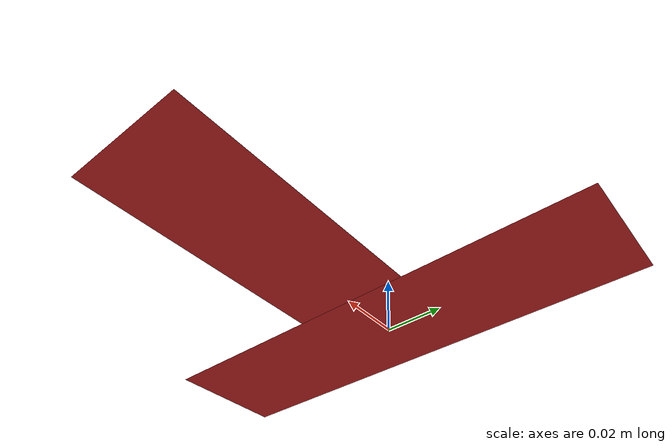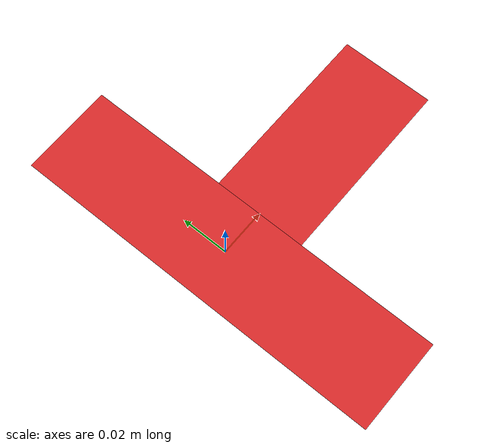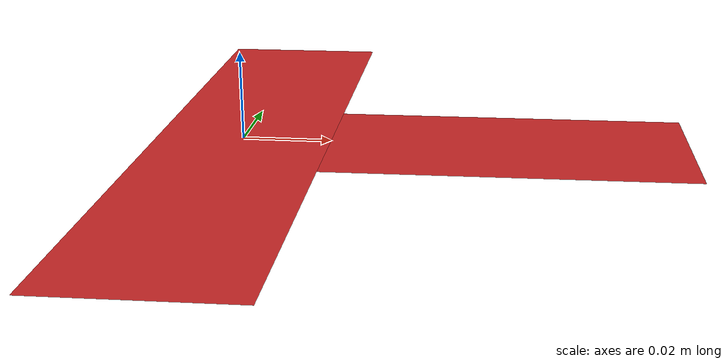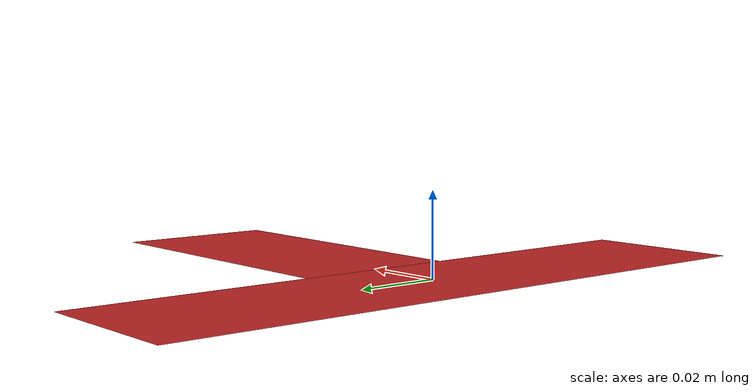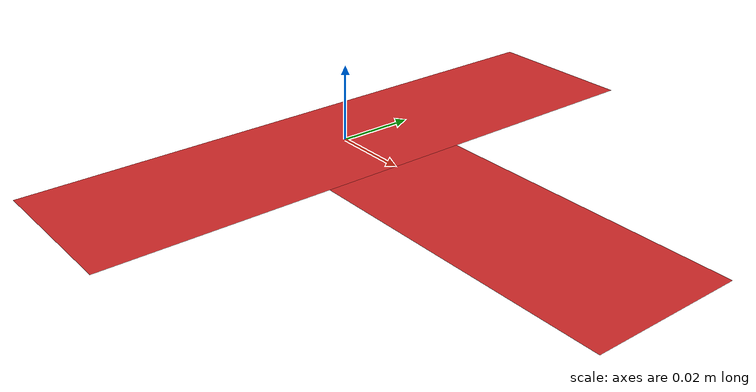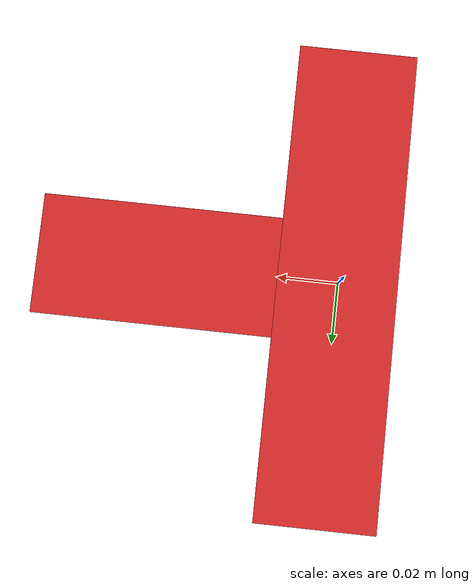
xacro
<?xml version="1.0"?>
<robot name="t_mark" xmlns:xacro="http://www.ros.org/wiki/xacro">
  <xacro:arg name="scale" default="1.0"/>
  <xacro:property name="s" value="$(arg scale)"/>

  <link name="mark_link">
    <inertial>
      <mass value="0.001"/>
      <origin xyz="0 0 0" rpy="0 0 0"/>
      <inertia ixx="0.0001" ixy="0" ixz="0" iyy="0.0001" iyz="0" izz="0.0001"/>
    </inertial>

    <visual>
      <geometry><box size="${0.04*s} ${0.16*s} 0.0"/></geometry>
    </visual>

    <visual>
      <origin xyz="${0.06*s} 0 0"/>
      <geometry><box size="${0.08*s} ${0.04*s} 0.0"/></geometry>
    </visual>
  </link>

  <gazebo reference="mark_link">
    <material>Gazebo/Red</material>
  </gazebo>

  <gazebo>
    <static>true</static>
  </gazebo>
</robot>
